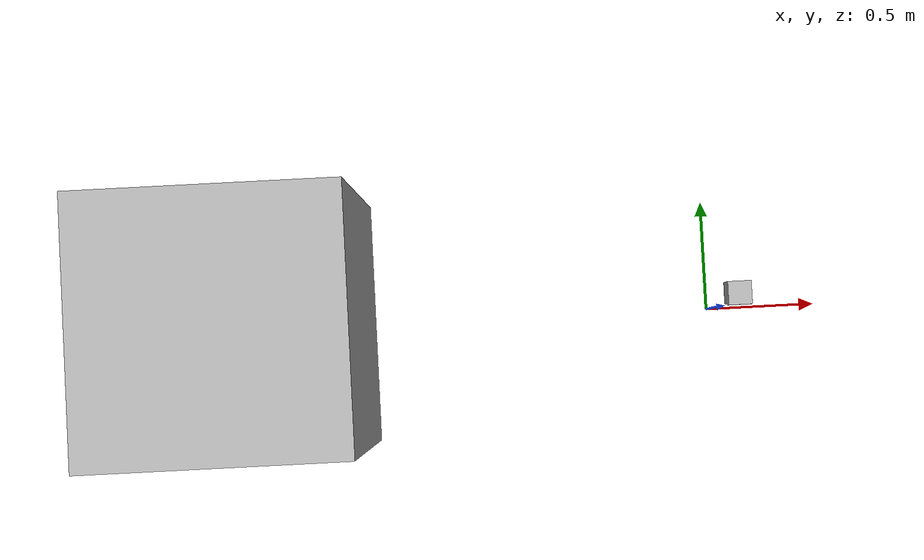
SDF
<?xml version="1.0" ?>
<sdf version="1.6">
  <world name="default">
    <plugin
    filename="ignition-gazebo-logical-camera-system"
    name="ignition::gazebo::systems::LogicalCamera">
    <render_engine>ogre2</render_engine>
  </plugin>

    <light type="directional" name="sun">
      <cast_shadows>true</cast_shadows>
      <pose>0 0 10 0 0 0</pose>
      <diffuse>0.8 0.8 0.8 1</diffuse>
      <specular>0.2 0.2 0.2 1</specular>
      <attenuation>
          <range>1000</range>
          <constant>0.9</constant>
          <linear>0.01</linear>
          <quadratic>0.001</quadratic>
      </attenuation>
      <direction>-0.5 0.1 -0.9</direction>
  </light>

  <model name="logical_camera">
    <static>true</static>
    <pose>0 0 0.5 0 0 0.0 </pose>
    <link name="logical_camera_link">
      <pose>0.05 0.05 0.05 0 0 0</pose>
      <collision name="collision">
        <geometry>
          <box>
            <size>0.1 0.1 0.1</size>
          </box>
        </geometry>
      </collision>
      <visual name="visual">
        <geometry>
          <box>
            <size>0.1 0.1 0.1</size>
          </box>
        </geometry>
      </visual>
      <sensor name='logical_camera' type='logical_camera'>"
        <update_rate>10</update_rate>
        <logical_camera>
          <near>0.55</near>
          <far>5</far>
          <horizontal_fov>1.04719755</horizontal_fov>
          <aspect_ratio>1.778</aspect_ratio>
        </logical_camera>
        <alwaysOn>1</alwaysOn>
        <visualize>true</visualize>
        <topic>logical_camera</topic>
        <enable_metrics>true</enable_metrics>
      </sensor>
    </link>
  </model>

    <model name="target_box">
      <static>true</static>
      <pose>-2 0 1 0 0 0</pose>
      <link name="link">
        <collision name="collision">
          <geometry>
            <box>
              <size>1 1 1</size>
            </box>
          </geometry>
        </collision>
        <visual name="visual">
          <geometry>
            <box>
              <size>1 1 1</size>
            </box>
          </geometry>
        </visual>
      </link>
    </model>
  </world>
</sdf>
